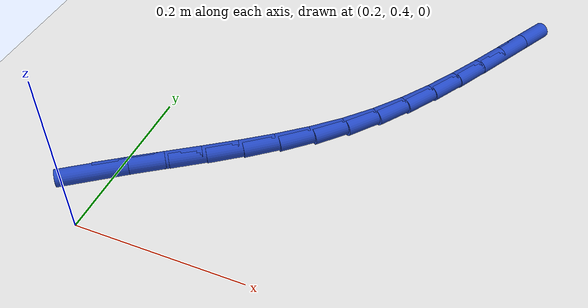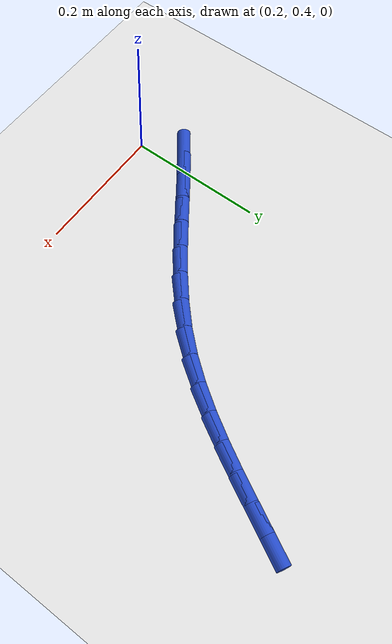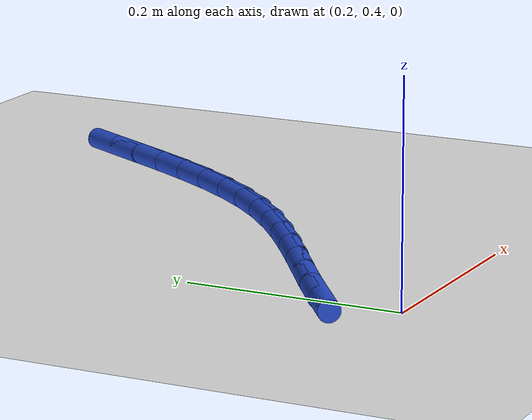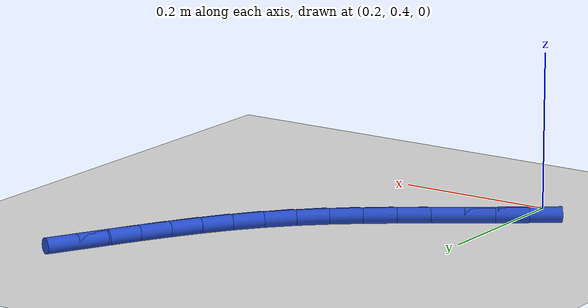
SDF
<sdf version="1.6">
 <world name="default">
  <model name="ground_plane">
   <static>1</static>
   <link name="link">
    <collision name="collision">
     <geometry><plane><normal>0 0 1</normal><size>100 100</size></plane></geometry>
     <surface><friction><ode><mu>100</mu><mu2>50</mu2></ode></friction></surface>
    </collision>
    <visual name="visual">
     <cast_shadows>0</cast_shadows>
     <geometry><plane><normal>0 0 1</normal><size>100 100</size></plane></geometry>
     <material>
      <script><uri>file://media/materials/scripts/gazebo.material</uri><name>Gazebo/WhiteGlow</name></script>
     </material>
    </visual>
   </link>
  </model>
  <model name="line">
   <link name="link_13">
    <pose>0.18016416238084695 0.4649216218518526 0.01 0 1.57 0.630918129645902</pose>
    <collision name="collision">
     <geometry><cylinder><radius>0.01</radius><length>0.08</length></cylinder></geometry>
    </collision>
    <visual name="visual">
     <material>
      <script><name>Gazebo/Blue</name><uri>file://media/materials/scripts/gazebo.material</uri></script>
     </material>
     <geometry><cylinder><radius>0.01</radius><length>0.08</length></cylinder></geometry>
    </visual>
   </link>
   <link name="link_14">
    <pose>0.2133460403199065 0.48916170992461705 0.01 0 1.57 0.6082403466574333</pose>
    <collision name="collision">
     <geometry><cylinder><radius>0.01</radius><length>0.08</length></cylinder></geometry>
    </collision>
    <visual name="visual">
     <material>
      <script><name>Gazebo/Blue</name><uri>file://media/materials/scripts/gazebo.material</uri></script>
     </material>
     <geometry><cylinder><radius>0.01</radius><length>0.08</length></cylinder></geometry>
    </visual>
   </link>
   <link name="link_15">
    <pose>0.2474935888953359 0.5129387454803512 0.01 0 1.57 0.6021179412890646</pose>
    <collision name="collision">
     <geometry><cylinder><radius>0.01</radius><length>0.08</length></cylinder></geometry>
    </collision>
    <visual name="visual">
     <material>
      <script><name>Gazebo/Blue</name><uri>file://media/materials/scripts/gazebo.material</uri></script>
     </material>
     <geometry><cylinder><radius>0.01</radius><length>0.08</length></cylinder></geometry>
    </visual>
   </link>
   <link name="link_16">
    <pose>0.2820234657802845 0.5366694224971662 0.01 0 1.57 0.61210895259274</pose>
    <collision name="collision">
     <geometry><cylinder><radius>0.01</radius><length>0.08</length></cylinder></geometry>
    </collision>
    <visual name="visual">
     <material>
      <script><name>Gazebo/Blue</name><uri>file://media/materials/scripts/gazebo.material</uri></script>
     </material>
     <geometry><cylinder><radius>0.01</radius><length>0.08</length></cylinder></geometry>
    </visual>
   </link>
   <link name="link_17">
    <pose>0.3163523286479016 0.5607704349531727 0.01 0 1.57 0.6383233110898776</pose>
    <collision name="collision">
     <geometry><cylinder><radius>0.01</radius><length>0.08</length></cylinder></geometry>
    </collision>
    <visual name="visual">
     <material>
      <script><name>Gazebo/Blue</name><uri>file://media/materials/scripts/gazebo.material</uri></script>
     </material>
     <geometry><cylinder><radius>0.01</radius><length>0.08</length></cylinder></geometry>
    </visual>
   </link>
   <link name="link_18">
    <pose>0.3498968351713371 0.5856584768264819 0.01 0 1.57 0.6813443812744477</pose>
    <collision name="collision">
     <geometry><cylinder><radius>0.01</radius><length>0.08</length></cylinder></geometry>
    </collision>
    <visual name="visual">
     <material>
      <script><name>Gazebo/Blue</name><uri>file://media/materials/scripts/gazebo.material</uri></script>
     </material>
     <geometry><cylinder><radius>0.01</radius><length>0.08</length></cylinder></geometry>
    </visual>
   </link>
   <link name="link_19">
    <pose>0.38207364302374014 0.6117502420952047 0.01 0 1.57 0.7420412788594396</pose>
    <collision name="collision">
     <geometry><cylinder><radius>0.01</radius><length>0.08</length></cylinder></geometry>
    </collision>
    <visual name="visual">
     <material>
      <script><name>Gazebo/Blue</name><uri>file://media/materials/scripts/gazebo.material</uri></script>
     </material>
     <geometry><cylinder><radius>0.01</radius><length>0.08</length></cylinder></geometry>
    </visual>
   </link>
   <link name="link_20">
    <pose>0.4122994098782606 0.6394624247374521 0.01 0 1.57 0.8199478126077163</pose>
    <collision name="collision">
     <geometry><cylinder><radius>0.01</radius><length>0.08</length></cylinder></geometry>
    </collision>
    <visual name="visual">
     <material>
      <script><name>Gazebo/Blue</name><uri>file://media/materials/scripts/gazebo.material</uri></script>
     </material>
     <geometry><cylinder><radius>0.01</radius><length>0.08</length></cylinder></geometry>
    </visual>
   </link>
   <link name="link_21">
    <pose>0.4400318864054562 0.6691805909734477 0.01 0 1.57 0.8978571288239355</pose>
    <collision name="collision">
     <geometry><cylinder><radius>0.01</radius><length>0.08</length></cylinder></geometry>
    </collision>
    <visual name="visual">
     <material>
      <script><name>Gazebo/Blue</name><uri>file://media/materials/scripts/gazebo.material</uri></script>
     </material>
     <geometry><cylinder><radius>0.01</radius><length>0.08</length></cylinder></geometry>
    </visual>
   </link>
   <link name="link_22">
    <pose>0.4652875677167394 0.7008670606609674 0.01 0 1.57 0.9624865989774353</pose>
    <collision name="collision">
     <geometry><cylinder><radius>0.01</radius><length>0.08</length></cylinder></geometry>
    </collision>
    <visual name="visual">
     <material>
      <script><name>Gazebo/Blue</name><uri>file://media/materials/scripts/gazebo.material</uri></script>
     </material>
     <geometry><cylinder><radius>0.01</radius><length>0.08</length></cylinder></geometry>
    </visual>
   </link>
   <link name="link_23">
    <pose>0.48848605872548084 0.7341787998235954 0.01 0 1.57 1.0131785752004256</pose>
    <collision name="collision">
     <geometry><cylinder><radius>0.01</radius><length>0.08</length></cylinder></geometry>
    </collision>
    <visual name="visual">
     <material>
      <script><name>Gazebo/Blue</name><uri>file://media/materials/scripts/gazebo.material</uri></script>
     </material>
     <geometry><cylinder><radius>0.01</radius><length>0.08</length></cylinder></geometry>
    </visual>
   </link>
   <link name="link_24">
    <pose>0.51005588660736 0.7687660159119605 0.01 0 1.57 1.0500255793085147</pose>
    <collision name="collision">
     <geometry><cylinder><radius>0.01</radius><length>0.08</length></cylinder></geometry>
    </collision>
    <visual name="visual">
     <material>
      <script><name>Gazebo/Blue</name><uri>file://media/materials/scripts/gazebo.material</uri></script>
     </material>
     <geometry><cylinder><radius>0.01</radius><length>0.08</length></cylinder></geometry>
    </visual>
   </link>
   <link name="link_25">
    <pose>0.530425578538057 0.8042789163766932 0.01 0 1.57 1.073303282597267</pose>
    <collision name="collision">
     <geometry><cylinder><radius>0.01</radius><length>0.08</length></cylinder></geometry>
    </collision>
    <visual name="visual">
     <material>
      <script><name>Gazebo/Blue</name><uri>file://media/materials/scripts/gazebo.material</uri></script>
     </material>
     <geometry><cylinder><radius>0.01</radius><length>0.08</length></cylinder></geometry>
    </visual>
   </link>
   <link name="link_26">
    <pose>0.5500236616932517 0.840367708668422 0.01 0 1.57 1.0832634348189036</pose>
    <collision name="collision">
     <geometry><cylinder><radius>0.01</radius><length>0.08</length></cylinder></geometry>
    </collision>
    <visual name="visual">
     <material>
      <script><name>Gazebo/Blue</name><uri>file://media/materials/scripts/gazebo.material</uri></script>
     </material>
     <geometry><cylinder><radius>0.01</radius><length>0.08</length></cylinder></geometry>
    </visual>
   </link>
   <link name="link_27">
    <pose>0.5692786632486232 0.8766826002377766 0.01 0 1.57 1.080011696290373</pose>
    <collision name="collision">
     <geometry><cylinder><radius>0.01</radius><length>0.08</length></cylinder></geometry>
    </collision>
    <visual name="visual">
     <material>
      <script><name>Gazebo/Blue</name><uri>file://media/materials/scripts/gazebo.material</uri></script>
     </material>
     <geometry><cylinder><radius>0.01</radius><length>0.08</length></cylinder></geometry>
    </visual>
   </link>
  </model>
 </world>
</sdf>
